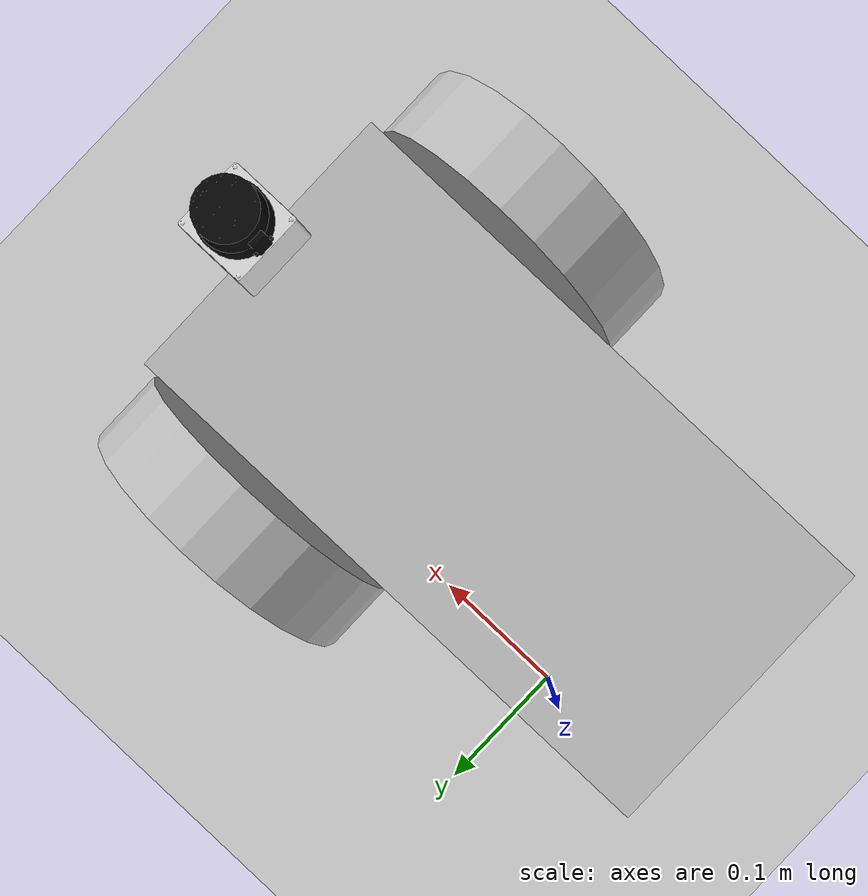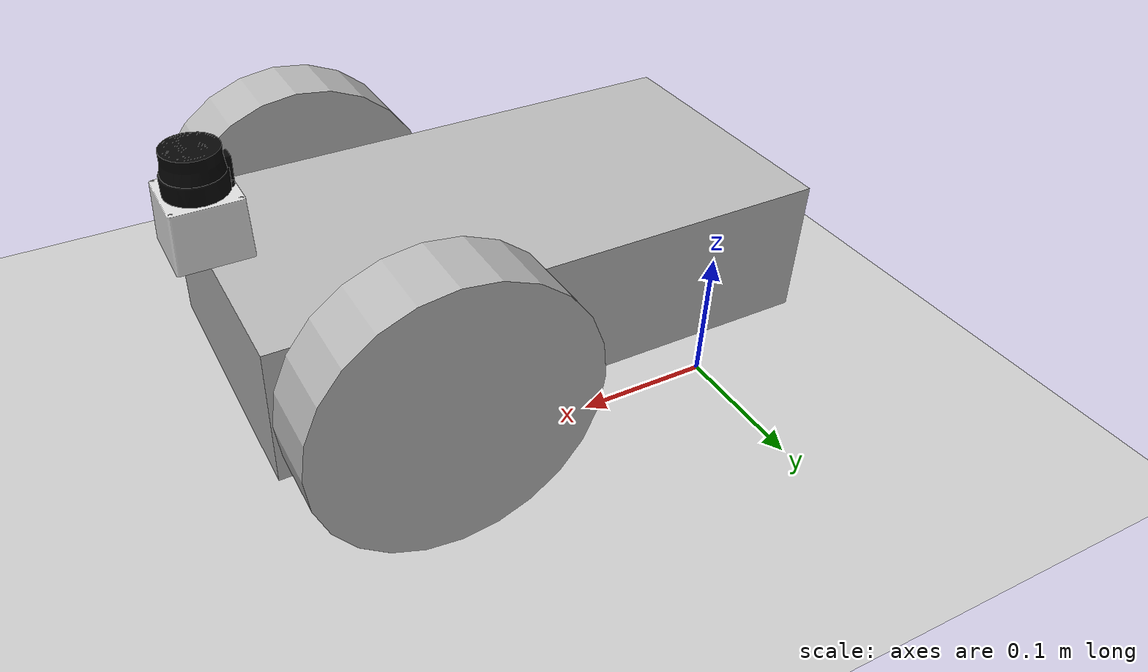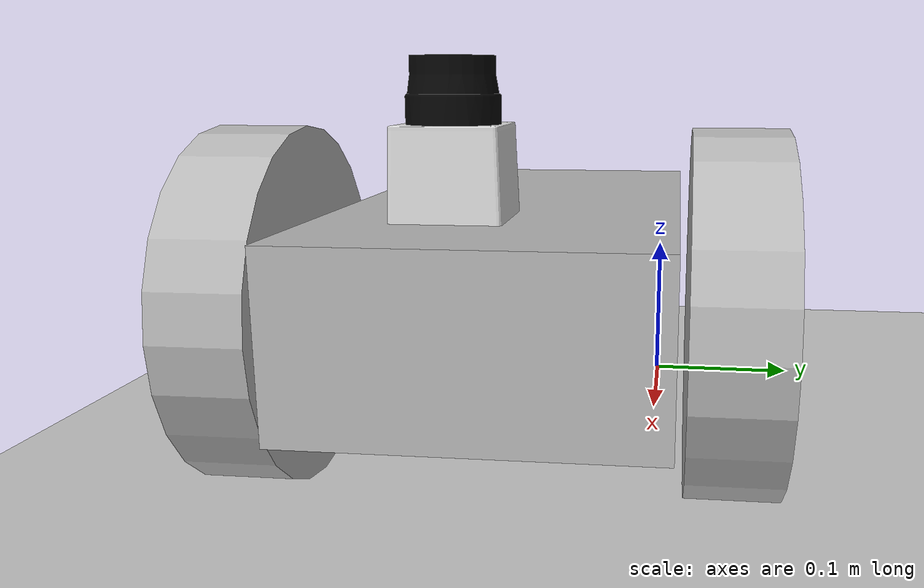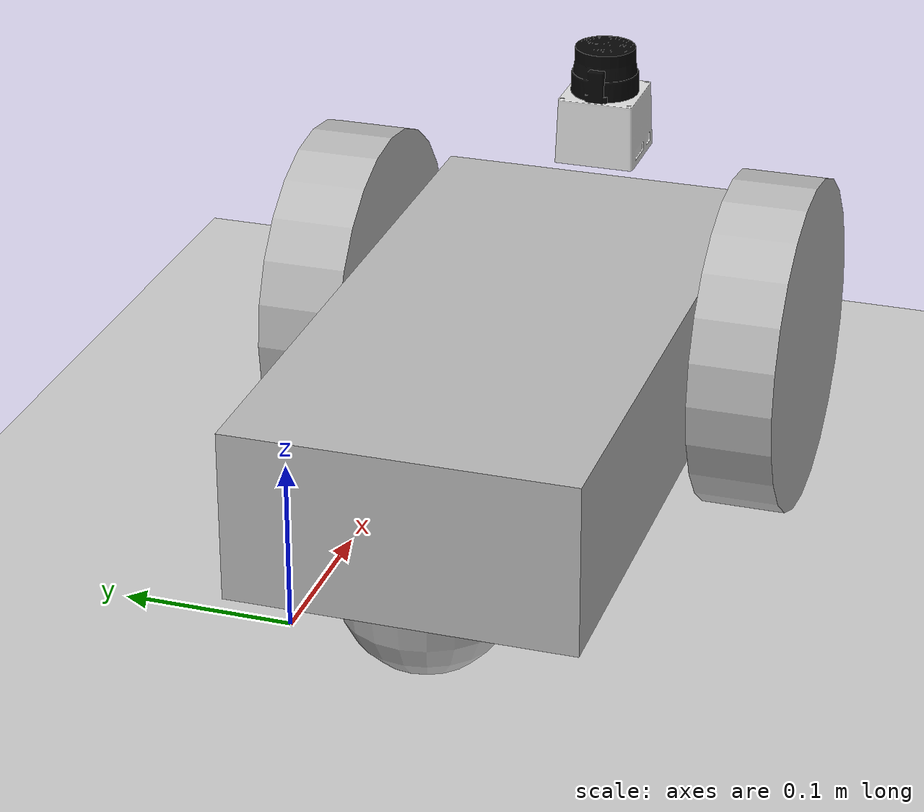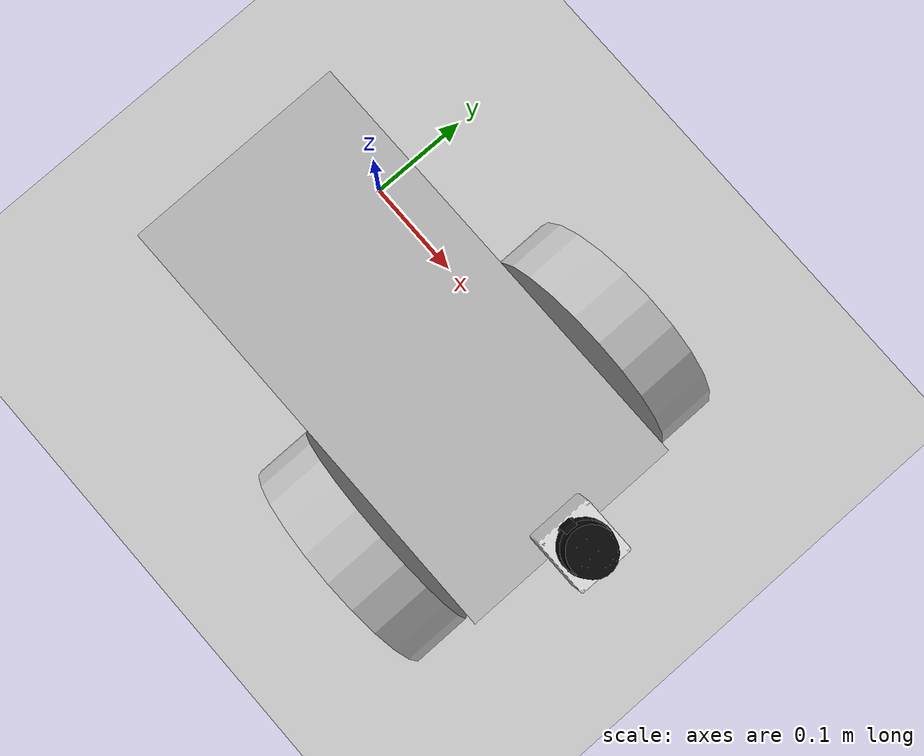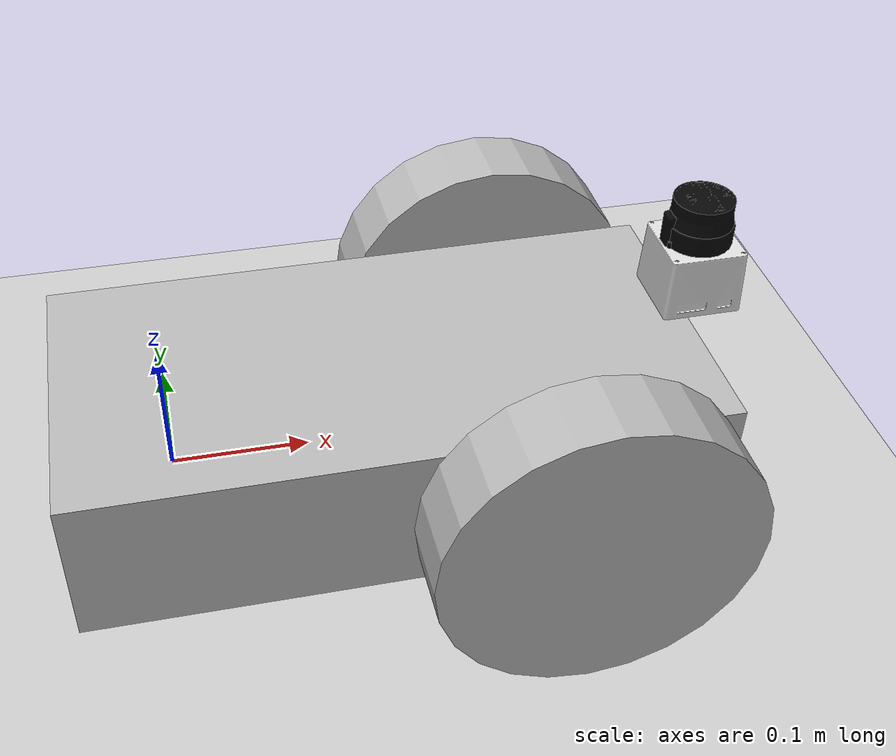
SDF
<sdf version="1.6">
 <world name="default">
  <light name="sun" type="directional">
   <pose>0 0 10 0 -0 0</pose>
   <diffuse>0.8 0.8 0.8 1</diffuse>
   <specular>0.1 0.1 0.1 1</specular>
   <attenuation>
    <range>1000</range>
    <constant>0.9</constant>
    <linear>0.01</linear>
    <quadratic>0.001</quadratic>
   </attenuation>
   <direction>-0.5 0.5 -1</direction>
  </light>
  <model name="ground_plane">
   <static>1</static>
   <link name="link">
    <collision name="collision">
     <geometry><plane><normal>0 0 1</normal><size>100 100</size></plane></geometry>
     <surface><friction><ode><mu>100</mu><mu2>50</mu2></ode></friction></surface>
    </collision>
    <visual name="visual">
     <cast_shadows>0</cast_shadows>
     <geometry><plane><normal>0 0 1</normal><size>100 100</size></plane></geometry>
     <material>
      <script><uri>file://media/materials/scripts/gazebo.material</uri><name>Gazebo/Grey</name></script>
     </material>
    </visual>
   </link>
  </model>
  <gravity>0 0 -9.8</gravity>
  <magnetic_field>6e-06 2.3e-05 -4.2e-05</magnetic_field>
  <atmosphere type="adiabatic"/>
  <physics name="default_physics" default="0" type="ode">
   <max_step_size>0.001</max_step_size>
   <real_time_factor>1</real_time_factor>
   <real_time_update_rate>1000</real_time_update_rate>
  </physics>
  <scene><ambient>0.4 0.4 0.4 1</ambient><background>0.7 0.7 0.7 1</background><shadows>1</shadows></scene>
  <spherical_coordinates>
   <surface_model>EARTH_WGS84</surface_model>
   <latitude_deg>0</latitude_deg>
   <longitude_deg>0</longitude_deg>
   <elevation>0</elevation>
   <heading_deg>0</heading_deg>
  </spherical_coordinates>
  <model name="my_robot">
   <static>0</static>
   <link name="chassis">
    <pose>0 0 0.1 0 -0 0</pose>
    <collision name="collision"><geometry><box><size>0.4 0.2 0.1</size></box></geometry></collision>
    <visual name="visual"><geometry><box><size>0.4 0.2 0.1</size></box></geometry></visual>
    <collision name="caster_collision">
     <pose>-0.15 0 -0.05 0 -0 0</pose>
     <geometry><sphere><radius>0.05</radius></sphere></geometry>
     <surface><friction><ode><mu>0</mu><mu2>0</mu2><slip1>1</slip1><slip2>1</slip2></ode></friction></surface>
    </collision>
    <visual name="caster_visual">
     <pose>-0.15 0 -0.05 0 -0 0</pose>
     <geometry><sphere><radius>0.05</radius></sphere></geometry>
    </visual>
    <inertial>
     <inertia><ixx>1</ixx><ixy>0</ixy><ixz>0</ixz><iyy>1</iyy><iyz>0</iyz><izz>1</izz></inertia>
     <mass>1</mass>
    </inertial>
   </link>
   <link name="left_wheel">
    <pose>0.1 0.13 0.1 -0 1.5707 1.5707</pose>
    <collision name="collision">
     <geometry><cylinder><radius>0.1</radius><length>0.05</length></cylinder></geometry>
    </collision>
    <visual name="visual">
     <geometry><cylinder><radius>0.1</radius><length>0.05</length></cylinder></geometry>
    </visual>
    <inertial>
     <inertia><ixx>1</ixx><ixy>0</ixy><ixz>0</ixz><iyy>1</iyy><iyz>0</iyz><izz>1</izz></inertia>
     <mass>1</mass>
    </inertial>
   </link>
   <link name="right_wheel">
    <pose>0.1 -0.13 0.1 -0 1.5707 1.5707</pose>
    <collision name="collision">
     <geometry><cylinder><radius>0.1</radius><length>0.05</length></cylinder></geometry>
    </collision>
    <visual name="visual">
     <geometry><cylinder><radius>0.1</radius><length>0.05</length></cylinder></geometry>
    </visual>
    <inertial>
     <inertia><ixx>1</ixx><ixy>0</ixy><ixz>0</ixz><iyy>1</iyy><iyz>0</iyz><izz>1</izz></inertia>
     <mass>1</mass>
    </inertial>
   </link>
   <joint name="left_wheel_hinge" type="revolute">
    <pose>0 0 -0.03 0 -0 0</pose>
    <child>left_wheel</child>
    <parent>chassis</parent>
    <axis>
     <xyz>0 1 0</xyz>
     <use_parent_model_frame>1</use_parent_model_frame>
     <limit><lower>-1e+16</lower><upper>1e+16</upper></limit>
     <dynamics><spring_reference>0</spring_reference><spring_stiffness>0</spring_stiffness></dynamics>
    </axis>
   </joint>
   <joint name="right_wheel_hinge" type="revolute">
    <pose>0 0 0.03 0 -0 0</pose>
    <child>right_wheel</child>
    <parent>chassis</parent>
    <axis>
     <xyz>0 1 0</xyz>
     <use_parent_model_frame>1</use_parent_model_frame>
     <limit><lower>-1e+16</lower><upper>1e+16</upper></limit>
     <dynamics><spring_reference>0</spring_reference><spring_stiffness>0</spring_stiffness></dynamics>
    </axis>
   </joint>
   <link name="hokuyo::link">
    <gravity>0</gravity>
    <inertial>
     <mass>0.1</mass>
     <inertia><ixx>1</ixx><ixy>0</ixy><ixz>0</ixz><iyy>1</iyy><iyz>0</iyz><izz>1</izz></inertia>
    </inertial>
    <visual name="visual">
     <geometry><mesh><uri>model://hokuyo/meshes/hokuyo.dae</uri><scale>1 1 1</scale></mesh></geometry>
    </visual>
    <sensor name="laser" type="ray">
     <pose>0.01 0 0.03 0 -0 0</pose>
     <ray>
      <scan>
       <horizontal>
        <samples>200</samples>
        <resolution>1</resolution>
        <min_angle>-1</min_angle>
        <max_angle>1</max_angle>
       </horizontal>
       <vertical><samples>1</samples><min_angle>0</min_angle><max_angle>0</max_angle></vertical>
      </scan>
      <range><min>0.08</min><max>10</max><resolution>0.1</resolution></range>
     </ray>
     <always_on>1</always_on>
     <update_rate>30</update_rate>
     <visualize>1</visualize>
    </sensor>
    <pose>0.2 0 0.2 0 -0 0</pose>
   </link>
   <joint name="hokuyo_joint" type="fixed"><child>hokuyo::link</child><parent>chassis</parent></joint>
   <pose>0.135986 -0.085502 -4e-06 1e-06 2.5e-05 0.003923</pose>
   <plugin name="robotMove" filename="librobotMove.so"/>
  </model>
 </world>
</sdf>
